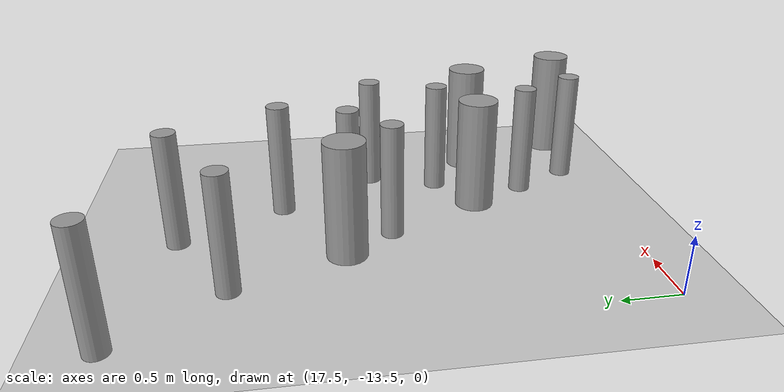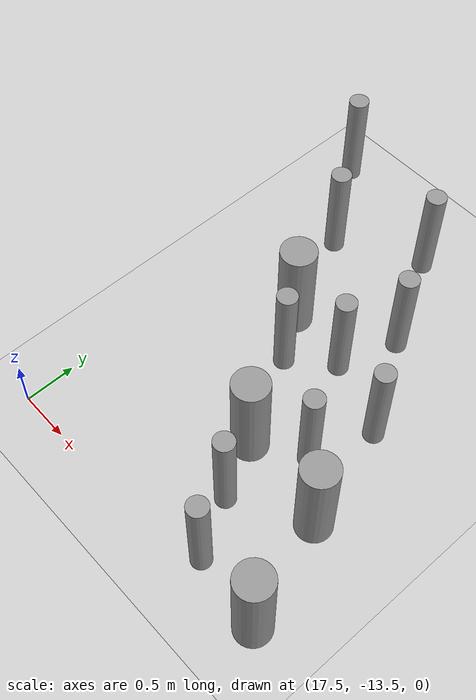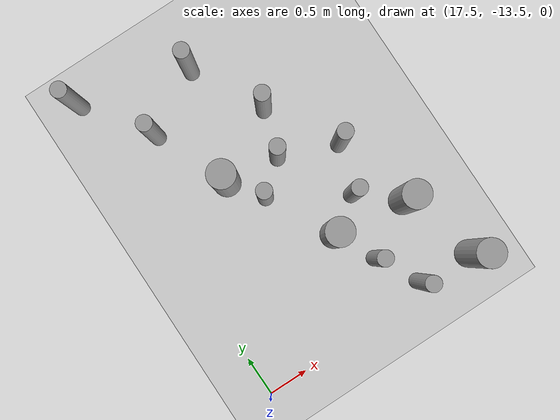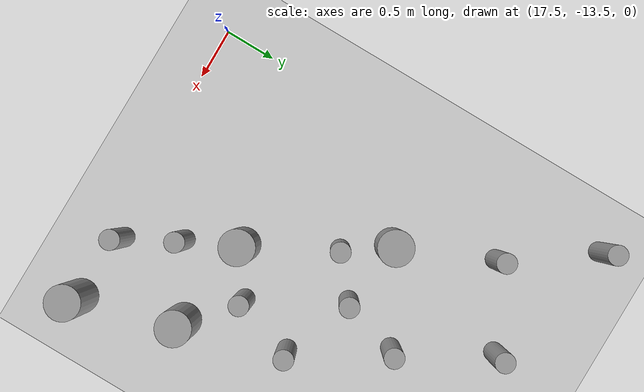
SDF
<sdf version="1.6">
 <world name="default">
  <model name="ground_plane">
   <static>1</static>
   <link name="link">
    <collision name="collision">
     <geometry><plane><normal>0 0 1</normal><size>100 100</size></plane></geometry>
     <surface><friction><ode><mu>100</mu><mu2>50</mu2></ode></friction></surface>
    </collision>
    <visual name="visual">
     <cast_shadows>0</cast_shadows>
     <geometry><plane><normal>0 0 1</normal><size>100 100</size></plane></geometry>
     <material>
      <script><uri>file://media/materials/scripts/gazebo.material</uri><name>Gazebo/Grey</name></script>
     </material>
    </visual>
   </link>
  </model>
  <model name="cyl_wall_clone_clone_1_clone_1_clone_clone_2">
   <link name="link_0">
    <pose>-2.73893 -0.366465 0 0 -0 0</pose>
    <inertial>
     <mass>0.0374993</mass>
     <inertia>
      <ixx>0.00321281</ixx>
      <ixy>0</ixy>
      <ixz>0</ixz>
      <iyy>0.00321281</iyy>
      <iyz>0</iyz>
      <izz>0.000175774</izz>
     </inertia>
    </inertial>
    <visual name="visual">
     <geometry><cylinder><radius>0.0968661</radius><length>1</length></cylinder></geometry>
     <material>
      <lighting>1</lighting>
      <script><uri>file://media/materials/scripts/gazebo.material</uri><name>Gazebo/Grey</name></script>
      <ambient>0.3 0.3 0.3 1</ambient>
      <diffuse>0.7 0.7 0.7 1</diffuse>
      <specular>0.01 0.01 0.01 1</specular>
      <emissive>0 0 0 1</emissive>
     </material>
    </visual>
    <collision name="collision">
     <geometry><cylinder><radius>0.096866</radius><length>1</length></cylinder></geometry>
     <surface>
      <friction>
       <ode><mu>1</mu><mu2>1</mu2><fdir1>0 0 0</fdir1><slip1>0</slip1><slip2>0</slip2></ode>
       <torsional>
        <coefficient>1</coefficient>
        <patch_radius>0</patch_radius>
        <surface_radius>0</surface_radius>
        <use_patch_radius>1</use_patch_radius>
        <ode><slip>0</slip></ode>
       </torsional>
      </friction>
      <bounce><restitution_coefficient>0</restitution_coefficient><threshold>1e+06</threshold></bounce>
      <contact>
       <collide_without_contact>0</collide_without_contact>
       <collide_without_contact_bitmask>1</collide_without_contact_bitmask>
       <collide_bitmask>1</collide_bitmask>
       <ode>
        <soft_cfm>0</soft_cfm>
        <soft_erp>0.2</soft_erp>
        <kp>1e+13</kp>
        <kd>1</kd>
        <max_vel>0.01</max_vel>
        <min_depth>0</min_depth>
       </ode>
       <bullet>
        <split_impulse>1</split_impulse>
        <split_impulse_penetration_threshold>-0.01</split_impulse_penetration_threshold>
        <soft_cfm>0</soft_cfm>
        <soft_erp>0.2</soft_erp>
        <kp>1e+13</kp>
        <kd>1</kd>
       </bullet>
      </contact>
     </surface>
    </collision>
   </link>
   <link name="link_0_clone">
    <pose>-1.73893 0.61877 0 0 -0 0</pose>
    <inertial>
     <mass>0.0374993</mass>
     <inertia>
      <ixx>0.00321281</ixx>
      <ixy>0</ixy>
      <ixz>0</ixz>
      <iyy>0.00321281</iyy>
      <iyz>0</iyz>
      <izz>0.000175774</izz>
     </inertia>
    </inertial>
    <visual name="visual">
     <geometry><cylinder><radius>0.0968661</radius><length>1</length></cylinder></geometry>
     <material>
      <lighting>1</lighting>
      <script><uri>file://media/materials/scripts/gazebo.material</uri><name>Gazebo/Grey</name></script>
      <ambient>0.3 0.3 0.3 1</ambient>
      <diffuse>0.7 0.7 0.7 1</diffuse>
      <specular>0.01 0.01 0.01 1</specular>
      <emissive>0 0 0 1</emissive>
      <shader type="pixel"/>
     </material>
    </visual>
    <collision name="collision">
     <geometry><cylinder><radius>0.096866</radius><length>1</length></cylinder></geometry>
     <surface>
      <friction>
       <ode><mu>1</mu><mu2>1</mu2><fdir1>0 0 0</fdir1><slip1>0</slip1><slip2>0</slip2></ode>
       <torsional>
        <coefficient>1</coefficient>
        <patch_radius>0</patch_radius>
        <surface_radius>0</surface_radius>
        <use_patch_radius>1</use_patch_radius>
        <ode><slip>0</slip></ode>
       </torsional>
      </friction>
      <bounce><restitution_coefficient>0</restitution_coefficient><threshold>1e+06</threshold></bounce>
      <contact>
       <collide_without_contact>0</collide_without_contact>
       <collide_without_contact_bitmask>1</collide_without_contact_bitmask>
       <collide_bitmask>1</collide_bitmask>
       <ode>
        <soft_cfm>0</soft_cfm>
        <soft_erp>0.2</soft_erp>
        <kp>1e+13</kp>
        <kd>1</kd>
        <max_vel>0.01</max_vel>
        <min_depth>0</min_depth>
       </ode>
       <bullet>
        <split_impulse>1</split_impulse>
        <split_impulse_penetration_threshold>-0.01</split_impulse_penetration_threshold>
        <soft_cfm>0</soft_cfm>
        <soft_erp>0.2</soft_erp>
        <kp>1e+13</kp>
        <kd>1</kd>
       </bullet>
      </contact>
     </surface>
    </collision>
   </link>
   <link name="link_0_clone_clone">
    <pose>-0.327073 0.143919 0 0 -0 0</pose>
    <inertial>
     <mass>0.0374993</mass>
     <inertia>
      <ixx>0.00321281</ixx>
      <ixy>0</ixy>
      <ixz>0</ixz>
      <iyy>0.00321281</iyy>
      <iyz>0</iyz>
      <izz>0.000175774</izz>
     </inertia>
    </inertial>
    <visual name="visual">
     <geometry><cylinder><radius>0.0968661</radius><length>1</length></cylinder></geometry>
     <material>
      <lighting>1</lighting>
      <script><uri>file://media/materials/scripts/gazebo.material</uri><name>Gazebo/Grey</name></script>
      <ambient>0.3 0.3 0.3 1</ambient>
      <diffuse>0.7 0.7 0.7 1</diffuse>
      <specular>0.01 0.01 0.01 1</specular>
      <emissive>0 0 0 1</emissive>
      <shader type="pixel"/>
     </material>
    </visual>
    <collision name="collision">
     <geometry><cylinder><radius>0.096866</radius><length>1</length></cylinder></geometry>
     <surface>
      <friction>
       <ode><mu>1</mu><mu2>1</mu2><fdir1>0 0 0</fdir1><slip1>0</slip1><slip2>0</slip2></ode>
       <torsional>
        <coefficient>1</coefficient>
        <patch_radius>0</patch_radius>
        <surface_radius>0</surface_radius>
        <use_patch_radius>1</use_patch_radius>
        <ode><slip>0</slip></ode>
       </torsional>
      </friction>
      <bounce><restitution_coefficient>0</restitution_coefficient><threshold>1e+06</threshold></bounce>
      <contact>
       <collide_without_contact>0</collide_without_contact>
       <collide_without_contact_bitmask>1</collide_without_contact_bitmask>
       <collide_bitmask>1</collide_bitmask>
       <ode>
        <soft_cfm>0</soft_cfm>
        <soft_erp>0.2</soft_erp>
        <kp>1e+13</kp>
        <kd>1</kd>
        <max_vel>0.01</max_vel>
        <min_depth>0</min_depth>
       </ode>
       <bullet>
        <split_impulse>1</split_impulse>
        <split_impulse_penetration_threshold>-0.01</split_impulse_penetration_threshold>
        <soft_cfm>0</soft_cfm>
        <soft_erp>0.2</soft_erp>
        <kp>1e+13</kp>
        <kd>1</kd>
       </bullet>
      </contact>
     </surface>
    </collision>
   </link>
   <link name="link_0_clone_clone_0">
    <pose>1.26107 -0.419359 0 0 -0 0</pose>
    <inertial>
     <mass>0.0374993</mass>
     <inertia>
      <ixx>0.00321281</ixx>
      <ixy>0</ixy>
      <ixz>0</ixz>
      <iyy>0.00321281</iyy>
      <iyz>0</iyz>
      <izz>0.000175774</izz>
     </inertia>
    </inertial>
    <visual name="visual">
     <geometry><cylinder><radius>0.0968661</radius><length>1</length></cylinder></geometry>
     <material>
      <lighting>1</lighting>
      <script><uri>file://media/materials/scripts/gazebo.material</uri><name>Gazebo/Grey</name></script>
      <ambient>0.3 0.3 0.3 1</ambient>
      <diffuse>0.7 0.7 0.7 1</diffuse>
      <specular>0.01 0.01 0.01 1</specular>
      <emissive>0 0 0 1</emissive>
      <shader type="pixel"/>
     </material>
    </visual>
    <collision name="collision">
     <geometry><cylinder><radius>0.096866</radius><length>1</length></cylinder></geometry>
     <surface>
      <friction>
       <ode><mu>1</mu><mu2>1</mu2><fdir1>0 0 0</fdir1><slip1>0</slip1><slip2>0</slip2></ode>
       <torsional>
        <coefficient>1</coefficient>
        <patch_radius>0</patch_radius>
        <surface_radius>0</surface_radius>
        <use_patch_radius>1</use_patch_radius>
        <ode><slip>0</slip></ode>
       </torsional>
      </friction>
      <bounce><restitution_coefficient>0</restitution_coefficient><threshold>1e+06</threshold></bounce>
      <contact>
       <collide_without_contact>0</collide_without_contact>
       <collide_without_contact_bitmask>1</collide_without_contact_bitmask>
       <collide_bitmask>1</collide_bitmask>
       <ode>
        <soft_cfm>0</soft_cfm>
        <soft_erp>0.2</soft_erp>
        <kp>1e+13</kp>
        <kd>1</kd>
        <max_vel>0.01</max_vel>
        <min_depth>0</min_depth>
       </ode>
       <bullet>
        <split_impulse>1</split_impulse>
        <split_impulse_penetration_threshold>-0.01</split_impulse_penetration_threshold>
        <soft_cfm>0</soft_cfm>
        <soft_erp>0.2</soft_erp>
        <kp>1e+13</kp>
        <kd>1</kd>
       </bullet>
      </contact>
     </surface>
    </collision>
   </link>
   <link name="link_0_clone_clone_1">
    <pose>-1.73893 -0.277168 0 0 -0 0</pose>
    <inertial>
     <mass>0.0374993</mass>
     <inertia>
      <ixx>0.00321281</ixx>
      <ixy>0</ixy>
      <ixz>0</ixz>
      <iyy>0.00321281</iyy>
      <iyz>0</iyz>
      <izz>0.000175774</izz>
     </inertia>
    </inertial>
    <visual name="visual">
     <geometry><cylinder><radius>0.0968661</radius><length>1</length></cylinder></geometry>
     <material>
      <lighting>1</lighting>
      <script><uri>file://media/materials/scripts/gazebo.material</uri><name>Gazebo/Grey</name></script>
      <ambient>0.3 0.3 0.3 1</ambient>
      <diffuse>0.7 0.7 0.7 1</diffuse>
      <specular>0.01 0.01 0.01 1</specular>
      <emissive>0 0 0 1</emissive>
      <shader type="pixel"/>
     </material>
    </visual>
    <collision name="collision">
     <geometry><cylinder><radius>0.096866</radius><length>1</length></cylinder></geometry>
     <surface>
      <friction>
       <ode><mu>1</mu><mu2>1</mu2><fdir1>0 0 0</fdir1><slip1>0</slip1><slip2>0</slip2></ode>
       <torsional>
        <coefficient>1</coefficient>
        <patch_radius>0</patch_radius>
        <surface_radius>0</surface_radius>
        <use_patch_radius>1</use_patch_radius>
        <ode><slip>0</slip></ode>
       </torsional>
      </friction>
      <bounce><restitution_coefficient>0</restitution_coefficient><threshold>1e+06</threshold></bounce>
      <contact>
       <collide_without_contact>0</collide_without_contact>
       <collide_without_contact_bitmask>1</collide_without_contact_bitmask>
       <collide_bitmask>1</collide_bitmask>
       <ode>
        <soft_cfm>0</soft_cfm>
        <soft_erp>0.2</soft_erp>
        <kp>1e+13</kp>
        <kd>1</kd>
        <max_vel>0.01</max_vel>
        <min_depth>0</min_depth>
       </ode>
       <bullet>
        <split_impulse>1</split_impulse>
        <split_impulse_penetration_threshold>-0.01</split_impulse_penetration_threshold>
        <soft_cfm>0</soft_cfm>
        <soft_erp>0.2</soft_erp>
        <kp>1e+13</kp>
        <kd>1</kd>
       </bullet>
      </contact>
     </surface>
    </collision>
   </link>
   <link name="link_0_clone_clone_2">
    <pose>-0.738934 0.593961 0 0 -0 0</pose>
    <inertial>
     <mass>0.0374993</mass>
     <inertia>
      <ixx>0.00321281</ixx>
      <ixy>0</ixy>
      <ixz>0</ixz>
      <iyy>0.00321281</iyy>
      <iyz>0</iyz>
      <izz>0.000175774</izz>
     </inertia>
    </inertial>
    <visual name="visual">
     <geometry><cylinder><radius>0.0968661</radius><length>1</length></cylinder></geometry>
     <material>
      <lighting>1</lighting>
      <script><uri>file://media/materials/scripts/gazebo.material</uri><name>Gazebo/Grey</name></script>
      <ambient>0.3 0.3 0.3 1</ambient>
      <diffuse>0.7 0.7 0.7 1</diffuse>
      <specular>0.01 0.01 0.01 1</specular>
      <emissive>0 0 0 1</emissive>
      <shader type="pixel"/>
     </material>
    </visual>
    <collision name="collision">
     <geometry><cylinder><radius>0.096866</radius><length>1</length></cylinder></geometry>
     <surface>
      <friction>
       <ode><mu>1</mu><mu2>1</mu2><fdir1>0 0 0</fdir1><slip1>0</slip1><slip2>0</slip2></ode>
       <torsional>
        <coefficient>1</coefficient>
        <patch_radius>0</patch_radius>
        <surface_radius>0</surface_radius>
        <use_patch_radius>1</use_patch_radius>
        <ode><slip>0</slip></ode>
       </torsional>
      </friction>
      <bounce><restitution_coefficient>0</restitution_coefficient><threshold>1e+06</threshold></bounce>
      <contact>
       <collide_without_contact>0</collide_without_contact>
       <collide_without_contact_bitmask>1</collide_without_contact_bitmask>
       <collide_bitmask>1</collide_bitmask>
       <ode>
        <soft_cfm>0</soft_cfm>
        <soft_erp>0.2</soft_erp>
        <kp>1e+13</kp>
        <kd>1</kd>
        <max_vel>0.01</max_vel>
        <min_depth>0</min_depth>
       </ode>
       <bullet>
        <split_impulse>1</split_impulse>
        <split_impulse_penetration_threshold>-0.01</split_impulse_penetration_threshold>
        <soft_cfm>0</soft_cfm>
        <soft_erp>0.2</soft_erp>
        <kp>1e+13</kp>
        <kd>1</kd>
       </bullet>
      </contact>
     </surface>
    </collision>
   </link>
   <link name="link_0_clone_clone_3">
    <pose>0.261066 0.624849 0 0 -0 0</pose>
    <inertial>
     <mass>0.0374993</mass>
     <inertia>
      <ixx>0.00321281</ixx>
      <ixy>0</ixy>
      <ixz>0</ixz>
      <iyy>0.00321281</iyy>
      <iyz>0</iyz>
      <izz>0.000175774</izz>
     </inertia>
    </inertial>
    <visual name="visual">
     <geometry><cylinder><radius>0.0968661</radius><length>1</length></cylinder></geometry>
     <material>
      <lighting>1</lighting>
      <script><uri>file://media/materials/scripts/gazebo.material</uri><name>Gazebo/Grey</name></script>
      <ambient>0.3 0.3 0.3 1</ambient>
      <diffuse>0.7 0.7 0.7 1</diffuse>
      <specular>0.01 0.01 0.01 1</specular>
      <emissive>0 0 0 1</emissive>
      <shader type="pixel"/>
     </material>
    </visual>
    <collision name="collision">
     <geometry><cylinder><radius>0.096866</radius><length>1</length></cylinder></geometry>
     <surface>
      <friction>
       <ode><mu>1</mu><mu2>1</mu2><fdir1>0 0 0</fdir1><slip1>0</slip1><slip2>0</slip2></ode>
       <torsional>
        <coefficient>1</coefficient>
        <patch_radius>0</patch_radius>
        <surface_radius>0</surface_radius>
        <use_patch_radius>1</use_patch_radius>
        <ode><slip>0</slip></ode>
       </torsional>
      </friction>
      <bounce><restitution_coefficient>0</restitution_coefficient><threshold>1e+06</threshold></bounce>
      <contact>
       <collide_without_contact>0</collide_without_contact>
       <collide_without_contact_bitmask>1</collide_without_contact_bitmask>
       <collide_bitmask>1</collide_bitmask>
       <ode>
        <soft_cfm>0</soft_cfm>
        <soft_erp>0.2</soft_erp>
        <kp>1e+13</kp>
        <kd>1</kd>
        <max_vel>0.01</max_vel>
        <min_depth>0</min_depth>
       </ode>
       <bullet>
        <split_impulse>1</split_impulse>
        <split_impulse_penetration_threshold>-0.01</split_impulse_penetration_threshold>
        <soft_cfm>0</soft_cfm>
        <soft_erp>0.2</soft_erp>
        <kp>1e+13</kp>
        <kd>1</kd>
       </bullet>
      </contact>
     </surface>
    </collision>
   </link>
   <link name="link_0_clone_clone_4">
    <pose>-0.239049 -0.353105 0 0 -0 0</pose>
    <inertial>
     <mass>0.0374993</mass>
     <inertia>
      <ixx>0.00321281</ixx>
      <ixy>0</ixy>
      <ixz>0</ixz>
      <iyy>0.00321281</iyy>
      <iyz>0</iyz>
      <izz>0.000175774</izz>
     </inertia>
    </inertial>
    <visual name="visual">
     <geometry><cylinder><radius>0.0968661</radius><length>1</length></cylinder></geometry>
     <material>
      <lighting>1</lighting>
      <script><uri>file://media/materials/scripts/gazebo.material</uri><name>Gazebo/Grey</name></script>
      <ambient>0.3 0.3 0.3 1</ambient>
      <diffuse>0.7 0.7 0.7 1</diffuse>
      <specular>0.01 0.01 0.01 1</specular>
      <emissive>0 0 0 1</emissive>
      <shader type="pixel"/>
     </material>
    </visual>
    <collision name="collision">
     <geometry><cylinder><radius>0.096866</radius><length>1</length></cylinder></geometry>
     <surface>
      <friction>
       <ode><mu>1</mu><mu2>1</mu2><fdir1>0 0 0</fdir1><slip1>0</slip1><slip2>0</slip2></ode>
       <torsional>
        <coefficient>1</coefficient>
        <patch_radius>0</patch_radius>
        <surface_radius>0</surface_radius>
        <use_patch_radius>1</use_patch_radius>
        <ode><slip>0</slip></ode>
       </torsional>
      </friction>
      <bounce><restitution_coefficient>0</restitution_coefficient><threshold>1e+06</threshold></bounce>
      <contact>
       <collide_without_contact>0</collide_without_contact>
       <collide_without_contact_bitmask>1</collide_without_contact_bitmask>
       <collide_bitmask>1</collide_bitmask>
       <ode>
        <soft_cfm>0</soft_cfm>
        <soft_erp>0.2</soft_erp>
        <kp>1e+13</kp>
        <kd>1</kd>
        <max_vel>0.01</max_vel>
        <min_depth>0</min_depth>
       </ode>
       <bullet>
        <split_impulse>1</split_impulse>
        <split_impulse_penetration_threshold>-0.01</split_impulse_penetration_threshold>
        <soft_cfm>0</soft_cfm>
        <soft_erp>0.2</soft_erp>
        <kp>1e+13</kp>
        <kd>1</kd>
       </bullet>
      </contact>
     </surface>
    </collision>
   </link>
   <link name="link_0_clone_clone_5">
    <pose>0.672792 0.143919 0 0 -0 0</pose>
    <inertial>
     <mass>0.0374993</mass>
     <inertia>
      <ixx>0.00321281</ixx>
      <ixy>0</ixy>
      <ixz>0</ixz>
      <iyy>0.00321281</iyy>
      <iyz>0</iyz>
      <izz>0.000175774</izz>
     </inertia>
    </inertial>
    <visual name="visual">
     <geometry><cylinder><radius>0.0968661</radius><length>1</length></cylinder></geometry>
     <material>
      <lighting>1</lighting>
      <script><uri>file://media/materials/scripts/gazebo.material</uri><name>Gazebo/Grey</name></script>
      <ambient>0.3 0.3 0.3 1</ambient>
      <diffuse>0.7 0.7 0.7 1</diffuse>
      <specular>0.01 0.01 0.01 1</specular>
      <emissive>0 0 0 1</emissive>
      <shader type="pixel"/>
     </material>
    </visual>
    <collision name="collision">
     <geometry><cylinder><radius>0.096866</radius><length>1</length></cylinder></geometry>
     <surface>
      <friction>
       <ode><mu>1</mu><mu2>1</mu2><fdir1>0 0 0</fdir1><slip1>0</slip1><slip2>0</slip2></ode>
       <torsional>
        <coefficient>1</coefficient>
        <patch_radius>0</patch_radius>
        <surface_radius>0</surface_radius>
        <use_patch_radius>1</use_patch_radius>
        <ode><slip>0</slip></ode>
       </torsional>
      </friction>
      <bounce><restitution_coefficient>0</restitution_coefficient><threshold>1e+06</threshold></bounce>
      <contact>
       <collide_without_contact>0</collide_without_contact>
       <collide_without_contact_bitmask>1</collide_without_contact_bitmask>
       <collide_bitmask>1</collide_bitmask>
       <ode>
        <soft_cfm>0</soft_cfm>
        <soft_erp>0.2</soft_erp>
        <kp>1e+13</kp>
        <kd>1</kd>
        <max_vel>0.01</max_vel>
        <min_depth>0</min_depth>
       </ode>
       <bullet>
        <split_impulse>1</split_impulse>
        <split_impulse_penetration_threshold>-0.01</split_impulse_penetration_threshold>
        <soft_cfm>0</soft_cfm>
        <soft_erp>0.2</soft_erp>
        <kp>1e+13</kp>
        <kd>1</kd>
       </bullet>
      </contact>
     </surface>
    </collision>
   </link>
   <link name="link_0_clone_clone_6">
    <pose>1.84596 -0.433423 0 0 -0 0</pose>
    <inertial>
     <mass>0.0374993</mass>
     <inertia>
      <ixx>0.00321281</ixx>
      <ixy>0</ixy>
      <ixz>0</ixz>
      <iyy>0.00321281</iyy>
      <iyz>0</iyz>
      <izz>0.000175774</izz>
     </inertia>
    </inertial>
    <visual name="visual">
     <geometry><cylinder><radius>0.0968661</radius><length>1</length></cylinder></geometry>
     <material>
      <lighting>1</lighting>
      <script><uri>file://media/materials/scripts/gazebo.material</uri><name>Gazebo/Grey</name></script>
      <ambient>0.3 0.3 0.3 1</ambient>
      <diffuse>0.7 0.7 0.7 1</diffuse>
      <specular>0.01 0.01 0.01 1</specular>
      <emissive>0 0 0 1</emissive>
      <shader type="pixel"/>
     </material>
    </visual>
    <collision name="collision">
     <geometry><cylinder><radius>0.096866</radius><length>1</length></cylinder></geometry>
     <surface>
      <friction>
       <ode><mu>1</mu><mu2>1</mu2><fdir1>0 0 0</fdir1><slip1>0</slip1><slip2>0</slip2></ode>
       <torsional>
        <coefficient>1</coefficient>
        <patch_radius>0</patch_radius>
        <surface_radius>0</surface_radius>
        <use_patch_radius>1</use_patch_radius>
        <ode><slip>0</slip></ode>
       </torsional>
      </friction>
      <bounce><restitution_coefficient>0</restitution_coefficient><threshold>1e+06</threshold></bounce>
      <contact>
       <collide_without_contact>0</collide_without_contact>
       <collide_without_contact_bitmask>1</collide_without_contact_bitmask>
       <collide_bitmask>1</collide_bitmask>
       <ode>
        <soft_cfm>0</soft_cfm>
        <soft_erp>0.2</soft_erp>
        <kp>1e+13</kp>
        <kd>1</kd>
        <max_vel>0.01</max_vel>
        <min_depth>0</min_depth>
       </ode>
       <bullet>
        <split_impulse>1</split_impulse>
        <split_impulse_penetration_threshold>-0.01</split_impulse_penetration_threshold>
        <soft_cfm>0</soft_cfm>
        <soft_erp>0.2</soft_erp>
        <kp>1e+13</kp>
        <kd>1</kd>
       </bullet>
      </contact>
     </surface>
    </collision>
   </link>
   <link name="link_1">
    <pose>-0.738934 -0.397931 0 0 -0 0</pose>
    <inertial>
     <mass>0.117398</mass>
     <inertia>
      <ixx>0.0106445</ixx>
      <ixy>0</ixy>
      <ixz>0</ixz>
      <iyy>0.0106445</iyy>
      <iyz>0</iyz>
      <izz>0.00172278</izz>
     </inertia>
    </inertial>
    <visual name="visual">
     <geometry><cylinder><radius>0.171317</radius><length>1</length></cylinder></geometry>
     <material>
      <lighting>1</lighting>
      <script><uri>file://media/materials/scripts/gazebo.material</uri><name>Gazebo/Grey</name></script>
      <ambient>0.3 0.3 0.3 1</ambient>
      <diffuse>0.7 0.7 0.7 1</diffuse>
      <specular>0.01 0.01 0.01 1</specular>
      <emissive>0 0 0 1</emissive>
     </material>
    </visual>
    <collision name="collision">
     <geometry><cylinder><radius>0.171317</radius><length>1</length></cylinder></geometry>
     <surface>
      <friction>
       <ode><mu>1</mu><mu2>1</mu2><fdir1>0 0 0</fdir1><slip1>0</slip1><slip2>0</slip2></ode>
       <torsional>
        <coefficient>1</coefficient>
        <patch_radius>0</patch_radius>
        <surface_radius>0</surface_radius>
        <use_patch_radius>1</use_patch_radius>
        <ode><slip>0</slip></ode>
       </torsional>
      </friction>
      <bounce><restitution_coefficient>0</restitution_coefficient><threshold>1e+06</threshold></bounce>
      <contact>
       <collide_without_contact>0</collide_without_contact>
       <collide_without_contact_bitmask>1</collide_without_contact_bitmask>
       <collide_bitmask>1</collide_bitmask>
       <ode>
        <soft_cfm>0</soft_cfm>
        <soft_erp>0.2</soft_erp>
        <kp>1e+13</kp>
        <kd>1</kd>
        <max_vel>0.01</max_vel>
        <min_depth>0</min_depth>
       </ode>
       <bullet>
        <split_impulse>1</split_impulse>
        <split_impulse_penetration_threshold>-0.01</split_impulse_penetration_threshold>
        <soft_cfm>0</soft_cfm>
        <soft_erp>0.2</soft_erp>
        <kp>1e+13</kp>
        <kd>1</kd>
       </bullet>
      </contact>
     </surface>
    </collision>
   </link>
   <link name="link_1_clone">
    <pose>0.697784 -0.380861 0 0 -0 0</pose>
    <inertial>
     <mass>0.117398</mass>
     <inertia>
      <ixx>0.0106445</ixx>
      <ixy>0</ixy>
      <ixz>0</ixz>
      <iyy>0.0106445</iyy>
      <iyz>0</iyz>
      <izz>0.00172278</izz>
     </inertia>
    </inertial>
    <visual name="visual">
     <geometry><cylinder><radius>0.171317</radius><length>1</length></cylinder></geometry>
     <material>
      <lighting>1</lighting>
      <script><uri>file://media/materials/scripts/gazebo.material</uri><name>Gazebo/Grey</name></script>
      <ambient>0.3 0.3 0.3 1</ambient>
      <diffuse>0.7 0.7 0.7 1</diffuse>
      <specular>0.01 0.01 0.01 1</specular>
      <emissive>0 0 0 1</emissive>
      <shader type="pixel"/>
     </material>
    </visual>
    <collision name="collision">
     <geometry><cylinder><radius>0.171317</radius><length>1</length></cylinder></geometry>
     <surface>
      <friction>
       <ode><mu>1</mu><mu2>1</mu2><fdir1>0 0 0</fdir1><slip1>0</slip1><slip2>0</slip2></ode>
       <torsional>
        <coefficient>1</coefficient>
        <patch_radius>0</patch_radius>
        <surface_radius>0</surface_radius>
        <use_patch_radius>1</use_patch_radius>
        <ode><slip>0</slip></ode>
       </torsional>
      </friction>
      <bounce><restitution_coefficient>0</restitution_coefficient><threshold>1e+06</threshold></bounce>
      <contact>
       <collide_without_contact>0</collide_without_contact>
       <collide_without_contact_bitmask>1</collide_without_contact_bitmask>
       <collide_bitmask>1</collide_bitmask>
       <ode>
        <soft_cfm>0</soft_cfm>
        <soft_erp>0.2</soft_erp>
        <kp>1e+13</kp>
        <kd>1</kd>
        <max_vel>0.01</max_vel>
        <min_depth>0</min_depth>
       </ode>
       <bullet>
        <split_impulse>1</split_impulse>
        <split_impulse_penetration_threshold>-0.01</split_impulse_penetration_threshold>
        <soft_cfm>0</soft_cfm>
        <soft_erp>0.2</soft_erp>
        <kp>1e+13</kp>
        <kd>1</kd>
       </bullet>
      </contact>
     </surface>
    </collision>
   </link>
   <link name="link_1_clone_0">
    <pose>1.26107 0.358974 0 0 -0 0</pose>
    <inertial>
     <mass>0.117398</mass>
     <inertia>
      <ixx>0.0106445</ixx>
      <ixy>0</ixy>
      <ixz>0</ixz>
      <iyy>0.0106445</iyy>
      <iyz>0</iyz>
      <izz>0.00172278</izz>
     </inertia>
    </inertial>
    <visual name="visual">
     <geometry><cylinder><radius>0.171317</radius><length>1</length></cylinder></geometry>
     <material>
      <lighting>1</lighting>
      <script><uri>file://media/materials/scripts/gazebo.material</uri><name>Gazebo/Grey</name></script>
      <ambient>0.3 0.3 0.3 1</ambient>
      <diffuse>0.7 0.7 0.7 1</diffuse>
      <specular>0.01 0.01 0.01 1</specular>
      <emissive>0 0 0 1</emissive>
      <shader type="pixel"/>
     </material>
    </visual>
    <collision name="collision">
     <geometry><cylinder><radius>0.171317</radius><length>1</length></cylinder></geometry>
     <surface>
      <friction>
       <ode><mu>1</mu><mu2>1</mu2><fdir1>0 0 0</fdir1><slip1>0</slip1><slip2>0</slip2></ode>
       <torsional>
        <coefficient>1</coefficient>
        <patch_radius>0</patch_radius>
        <surface_radius>0</surface_radius>
        <use_patch_radius>1</use_patch_radius>
        <ode><slip>0</slip></ode>
       </torsional>
      </friction>
      <bounce><restitution_coefficient>0</restitution_coefficient><threshold>1e+06</threshold></bounce>
      <contact>
       <collide_without_contact>0</collide_without_contact>
       <collide_without_contact_bitmask>1</collide_without_contact_bitmask>
       <collide_bitmask>1</collide_bitmask>
       <ode>
        <soft_cfm>0</soft_cfm>
        <soft_erp>0.2</soft_erp>
        <kp>1e+13</kp>
        <kd>1</kd>
        <max_vel>0.01</max_vel>
        <min_depth>0</min_depth>
       </ode>
       <bullet>
        <split_impulse>1</split_impulse>
        <split_impulse_penetration_threshold>-0.01</split_impulse_penetration_threshold>
        <soft_cfm>0</soft_cfm>
        <soft_erp>0.2</soft_erp>
        <kp>1e+13</kp>
        <kd>1</kd>
       </bullet>
      </contact>
     </surface>
    </collision>
   </link>
   <link name="link_1_clone_1">
    <pose>2.26107 0.143919 0 0 -0 0</pose>
    <inertial>
     <mass>0.117398</mass>
     <inertia>
      <ixx>0.0106445</ixx>
      <ixy>0</ixy>
      <ixz>0</ixz>
      <iyy>0.0106445</iyy>
      <iyz>0</iyz>
      <izz>0.00172278</izz>
     </inertia>
    </inertial>
    <visual name="visual">
     <geometry><cylinder><radius>0.171317</radius><length>1</length></cylinder></geometry>
     <material>
      <lighting>1</lighting>
      <script><uri>file://media/materials/scripts/gazebo.material</uri><name>Gazebo/Grey</name></script>
      <ambient>0.3 0.3 0.3 1</ambient>
      <diffuse>0.7 0.7 0.7 1</diffuse>
      <specular>0.01 0.01 0.01 1</specular>
      <emissive>0 0 0 1</emissive>
      <shader type="pixel"/>
     </material>
    </visual>
    <collision name="collision">
     <geometry><cylinder><radius>0.171317</radius><length>1</length></cylinder></geometry>
     <surface>
      <friction>
       <ode><mu>1</mu><mu2>1</mu2><fdir1>0 0 0</fdir1><slip1>0</slip1><slip2>0</slip2></ode>
       <torsional>
        <coefficient>1</coefficient>
        <patch_radius>0</patch_radius>
        <surface_radius>0</surface_radius>
        <use_patch_radius>1</use_patch_radius>
        <ode><slip>0</slip></ode>
       </torsional>
      </friction>
      <bounce><restitution_coefficient>0</restitution_coefficient><threshold>1e+06</threshold></bounce>
      <contact>
       <collide_without_contact>0</collide_without_contact>
       <collide_without_contact_bitmask>1</collide_without_contact_bitmask>
       <collide_bitmask>1</collide_bitmask>
       <ode>
        <soft_cfm>0</soft_cfm>
        <soft_erp>0.2</soft_erp>
        <kp>1e+13</kp>
        <kd>1</kd>
        <max_vel>0.01</max_vel>
        <min_depth>0</min_depth>
       </ode>
       <bullet>
        <split_impulse>1</split_impulse>
        <split_impulse_penetration_threshold>-0.01</split_impulse_penetration_threshold>
        <soft_cfm>0</soft_cfm>
        <soft_erp>0.2</soft_erp>
        <kp>1e+13</kp>
        <kd>1</kd>
       </bullet>
      </contact>
     </surface>
    </collision>
   </link>
   <static>1</static>
   <pose>19.1696 -11.5229 0.5 0 0 -1.04703</pose>
  </model>
 </world>
</sdf>
